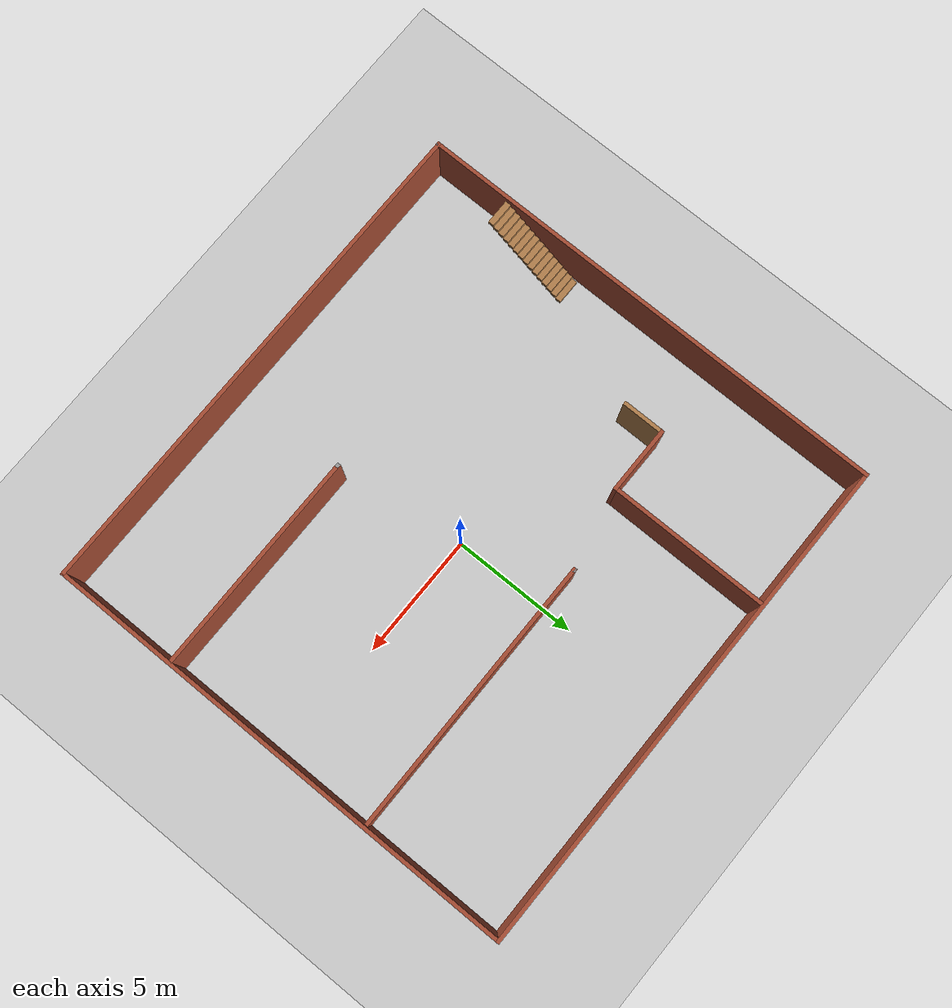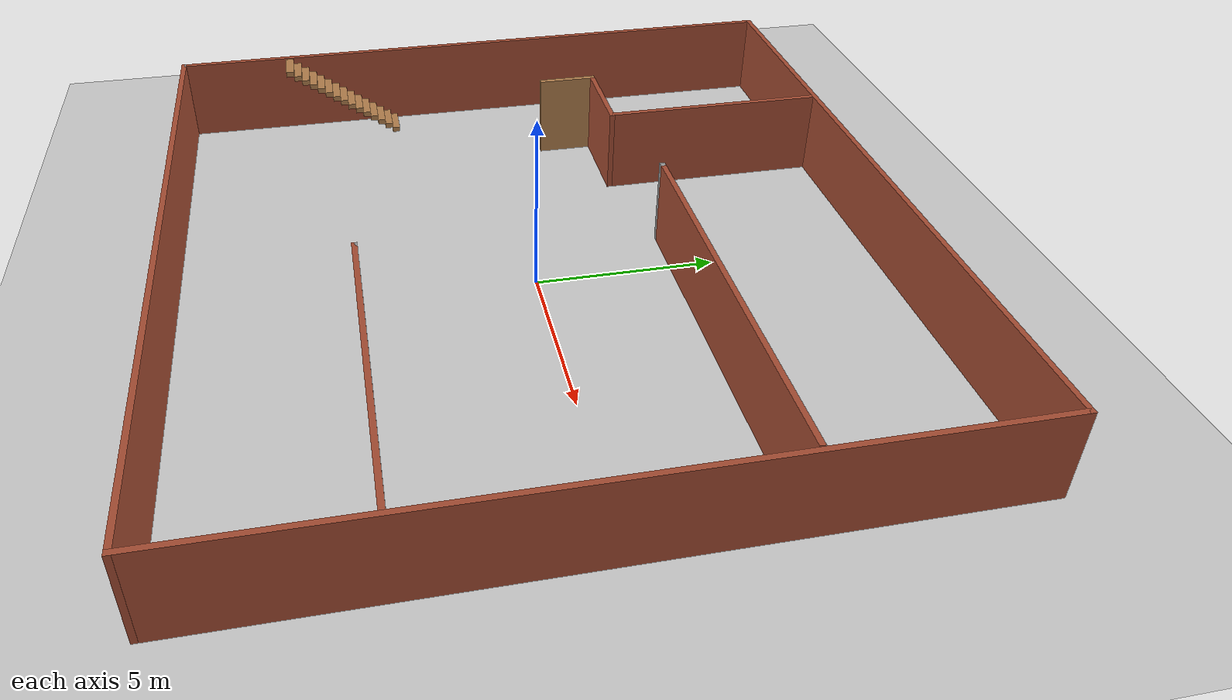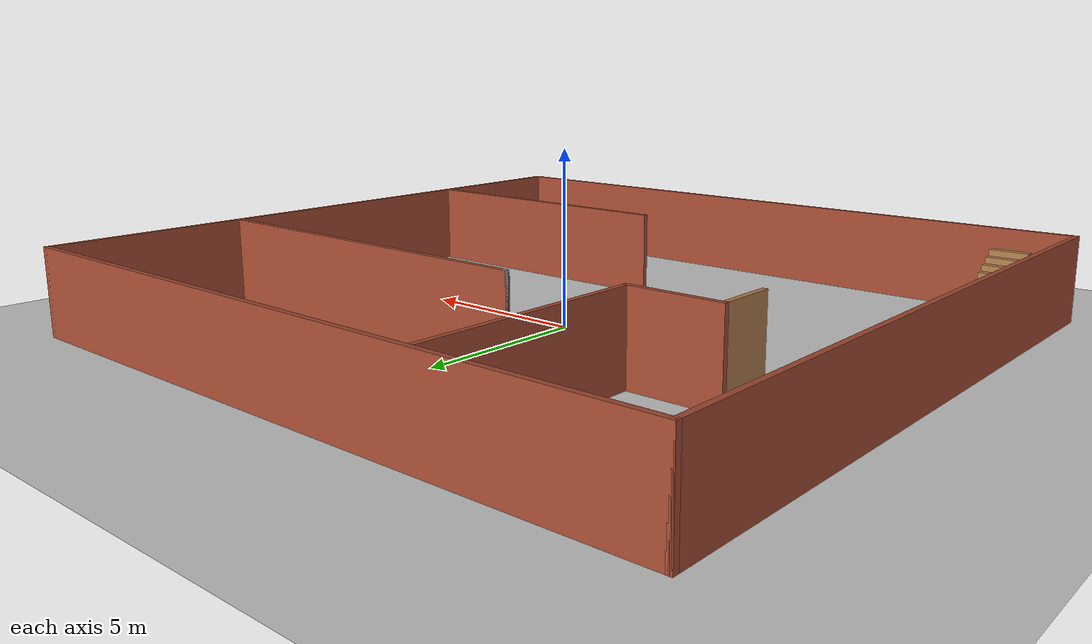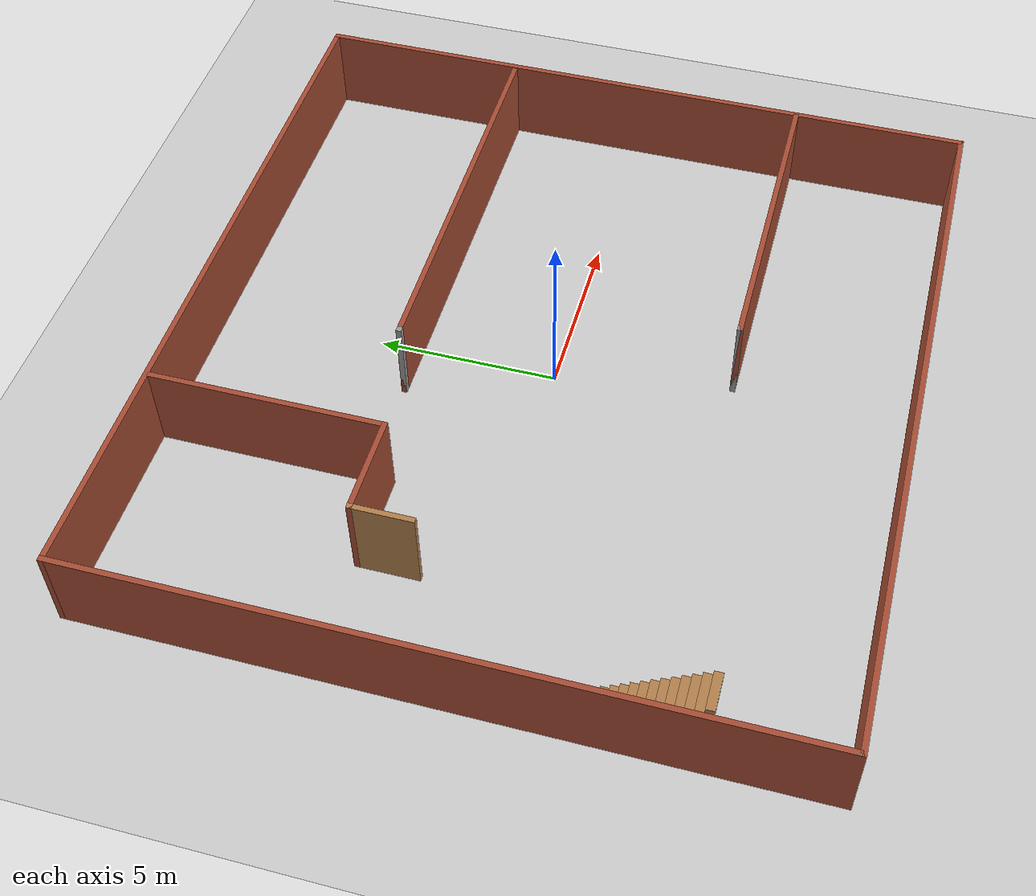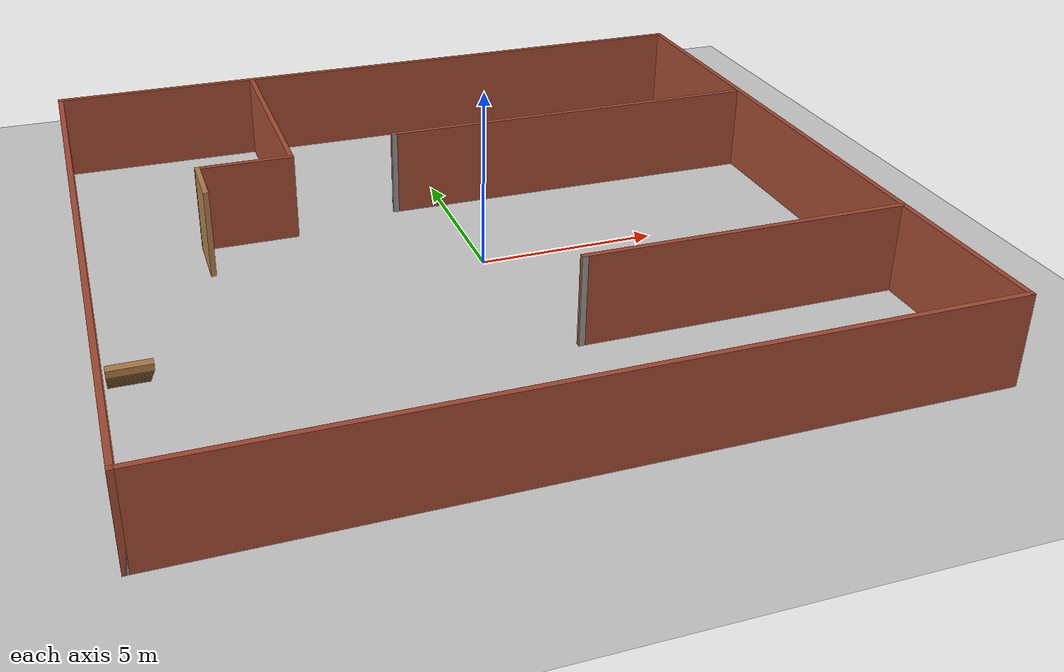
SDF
<sdf version="1.7">
 <world name="default">
  <light name="sun" type="directional">
   <pose>0 0 10 0 -0 0</pose>
   <diffuse>0.8 0.8 0.8 1</diffuse>
   <specular>0.2 0.2 0.2 1</specular>
   <attenuation>
    <range>1000</range>
    <constant>0.9</constant>
    <linear>0.01</linear>
    <quadratic>0.001</quadratic>
   </attenuation>
   <direction>-0.5 0.1 -0.9</direction>
   <spot><inner_angle>0</inner_angle><outer_angle>0</outer_angle><falloff>0</falloff></spot>
  </light>
  <model name="ground_plane">
   <static>1</static>
   <link name="link">
    <collision name="collision">
     <geometry><plane><normal>0 0 1</normal><size>100 100</size></plane></geometry>
     <surface>
      <contact><collide_bitmask>65535</collide_bitmask></contact>
      <friction><ode><mu>100</mu><mu2>50</mu2></ode></friction>
     </surface>
    </collision>
    <visual name="visual">
     <cast_shadows>0</cast_shadows>
     <geometry><plane><normal>0 0 1</normal><size>100 100</size></plane></geometry>
     <material>
      <script><uri>file://media/materials/scripts/gazebo.material</uri><name>Gazebo/Grey</name></script>
     </material>
    </visual>
   </link>
  </model>
  <gravity>0 0 -9.8</gravity>
  <magnetic_field>6e-06 2.3e-05 -4.2e-05</magnetic_field>
  <atmosphere type="adiabatic"/>
  <physics type="ode">
   <max_step_size>0.001</max_step_size>
   <real_time_factor>1</real_time_factor>
   <real_time_update_rate>1000</real_time_update_rate>
  </physics>
  <scene><ambient>0.4 0.4 0.4 1</ambient><background>0.7 0.7 0.7 1</background><shadows>1</shadows></scene>
  <audio><device>default</device></audio>
  <spherical_coordinates>
   <surface_model>EARTH_WGS84</surface_model>
   <latitude_deg>0</latitude_deg>
   <longitude_deg>0</longitude_deg>
   <elevation>0</elevation>
   <heading_deg>0</heading_deg>
  </spherical_coordinates>
  <model name="house_1">
   <pose>-0.36195 -0.003569 0 0 -0 0</pose>
   <link name="Stairs_0">
    <visual name="Stairs_0_Visual_0">
     <pose>-9.51882 -3.01859 0.083333 0 -0 0</pose>
     <geometry><box><size>1 0.233333 0.166667</size></box></geometry>
     <material>
      <script><uri>file://media/materials/scripts/gazebo.material</uri><name>Gazebo/Wood</name></script>
      <ambient>1 1 1 1</ambient>
     </material>
     <meta><layer>0</layer></meta>
    </visual>
    <collision name="Stairs_0_Collision_0">
     <geometry><box><size>1 0.233333 0.166667</size></box></geometry>
     <pose>-9.51882 -3.01859 0.083333 0 -0 0</pose>
    </collision>
    <visual name="Stairs_0_Visual_1">
     <pose>-9.51882 -3.25192 0.25 0 -0 0</pose>
     <geometry><box><size>1 0.233333 0.166667</size></box></geometry>
     <material>
      <script><uri>file://media/materials/scripts/gazebo.material</uri><name>Gazebo/Wood</name></script>
      <ambient>1 1 1 1</ambient>
     </material>
     <meta><layer>0</layer></meta>
    </visual>
    <collision name="Stairs_0_Collision_1">
     <geometry><box><size>1 0.233333 0.166667</size></box></geometry>
     <pose>-9.51882 -3.25192 0.25 0 -0 0</pose>
    </collision>
    <visual name="Stairs_0_Visual_2">
     <pose>-9.51882 -3.48526 0.416667 0 -0 0</pose>
     <geometry><box><size>1 0.233333 0.166667</size></box></geometry>
     <material>
      <script><uri>file://media/materials/scripts/gazebo.material</uri><name>Gazebo/Wood</name></script>
      <ambient>1 1 1 1</ambient>
     </material>
     <meta><layer>0</layer></meta>
    </visual>
    <collision name="Stairs_0_Collision_2">
     <geometry><box><size>1 0.233333 0.166667</size></box></geometry>
     <pose>-9.51882 -3.48526 0.416667 0 -0 0</pose>
    </collision>
    <visual name="Stairs_0_Visual_3">
     <pose>-9.51882 -3.71859 0.583333 0 -0 0</pose>
     <geometry><box><size>1 0.233333 0.166667</size></box></geometry>
     <material>
      <script><uri>file://media/materials/scripts/gazebo.material</uri><name>Gazebo/Wood</name></script>
      <ambient>1 1 1 1</ambient>
     </material>
     <meta><layer>0</layer></meta>
    </visual>
    <collision name="Stairs_0_Collision_3">
     <geometry><box><size>1 0.233333 0.166667</size></box></geometry>
     <pose>-9.51882 -3.71859 0.583333 0 -0 0</pose>
    </collision>
    <visual name="Stairs_0_Visual_4">
     <pose>-9.51882 -3.95193 0.75 0 -0 0</pose>
     <geometry><box><size>1 0.233333 0.166667</size></box></geometry>
     <material>
      <script><uri>file://media/materials/scripts/gazebo.material</uri><name>Gazebo/Wood</name></script>
      <ambient>1 1 1 1</ambient>
     </material>
     <meta><layer>0</layer></meta>
    </visual>
    <collision name="Stairs_0_Collision_4">
     <geometry><box><size>1 0.233333 0.166667</size></box></geometry>
     <pose>-9.51882 -3.95193 0.75 0 -0 0</pose>
    </collision>
    <visual name="Stairs_0_Visual_5">
     <pose>-9.51882 -4.18526 0.916667 0 -0 0</pose>
     <geometry><box><size>1 0.233333 0.166667</size></box></geometry>
     <material>
      <script><uri>file://media/materials/scripts/gazebo.material</uri><name>Gazebo/Wood</name></script>
      <ambient>1 1 1 1</ambient>
     </material>
     <meta><layer>0</layer></meta>
    </visual>
    <collision name="Stairs_0_Collision_5">
     <geometry><box><size>1 0.233333 0.166667</size></box></geometry>
     <pose>-9.51882 -4.18526 0.916667 0 -0 0</pose>
    </collision>
    <visual name="Stairs_0_Visual_6">
     <pose>-9.51882 -4.41859 1.08333 0 -0 0</pose>
     <geometry><box><size>1 0.233333 0.166667</size></box></geometry>
     <material>
      <script><uri>file://media/materials/scripts/gazebo.material</uri><name>Gazebo/Wood</name></script>
      <ambient>1 1 1 1</ambient>
     </material>
     <meta><layer>0</layer></meta>
    </visual>
    <collision name="Stairs_0_Collision_6">
     <geometry><box><size>1 0.233333 0.166667</size></box></geometry>
     <pose>-9.51882 -4.41859 1.08333 0 -0 0</pose>
    </collision>
    <visual name="Stairs_0_Visual_7">
     <pose>-9.51882 -4.65193 1.25 0 -0 0</pose>
     <geometry><box><size>1 0.233333 0.166667</size></box></geometry>
     <material>
      <script><uri>file://media/materials/scripts/gazebo.material</uri><name>Gazebo/Wood</name></script>
      <ambient>1 1 1 1</ambient>
     </material>
     <meta><layer>0</layer></meta>
    </visual>
    <collision name="Stairs_0_Collision_7">
     <geometry><box><size>1 0.233333 0.166667</size></box></geometry>
     <pose>-9.51882 -4.65193 1.25 0 -0 0</pose>
    </collision>
    <visual name="Stairs_0_Visual_8">
     <pose>-9.51882 -4.88526 1.41667 0 -0 0</pose>
     <geometry><box><size>1 0.233333 0.166667</size></box></geometry>
     <material>
      <script><uri>file://media/materials/scripts/gazebo.material</uri><name>Gazebo/Wood</name></script>
      <ambient>1 1 1 1</ambient>
     </material>
     <meta><layer>0</layer></meta>
    </visual>
    <collision name="Stairs_0_Collision_8">
     <geometry><box><size>1 0.233333 0.166667</size></box></geometry>
     <pose>-9.51882 -4.88526 1.41667 0 -0 0</pose>
    </collision>
    <visual name="Stairs_0_Visual_9">
     <pose>-9.51882 -5.11859 1.58333 0 -0 0</pose>
     <geometry><box><size>1 0.233333 0.166667</size></box></geometry>
     <material>
      <script><uri>file://media/materials/scripts/gazebo.material</uri><name>Gazebo/Wood</name></script>
      <ambient>1 1 1 1</ambient>
     </material>
     <meta><layer>0</layer></meta>
    </visual>
    <collision name="Stairs_0_Collision_9">
     <geometry><box><size>1 0.233333 0.166667</size></box></geometry>
     <pose>-9.51882 -5.11859 1.58333 0 -0 0</pose>
    </collision>
    <visual name="Stairs_0_Visual_10">
     <pose>-9.51882 -5.35192 1.75 0 -0 0</pose>
     <geometry><box><size>1 0.233333 0.166667</size></box></geometry>
     <material>
      <script><uri>file://media/materials/scripts/gazebo.material</uri><name>Gazebo/Wood</name></script>
      <ambient>1 1 1 1</ambient>
     </material>
     <meta><layer>0</layer></meta>
    </visual>
    <collision name="Stairs_0_Collision_10">
     <geometry><box><size>1 0.233333 0.166667</size></box></geometry>
     <pose>-9.51882 -5.35192 1.75 0 -0 0</pose>
    </collision>
    <visual name="Stairs_0_Visual_11">
     <pose>-9.51882 -5.58526 1.91667 0 -0 0</pose>
     <geometry><box><size>1 0.233333 0.166667</size></box></geometry>
     <material>
      <script><uri>file://media/materials/scripts/gazebo.material</uri><name>Gazebo/Wood</name></script>
      <ambient>1 1 1 1</ambient>
     </material>
     <meta><layer>0</layer></meta>
    </visual>
    <collision name="Stairs_0_Collision_11">
     <geometry><box><size>1 0.233333 0.166667</size></box></geometry>
     <pose>-9.51882 -5.58526 1.91667 0 -0 0</pose>
    </collision>
    <visual name="Stairs_0_Visual_12">
     <pose>-9.51882 -5.81859 2.08333 0 -0 0</pose>
     <geometry><box><size>1 0.233333 0.166667</size></box></geometry>
     <material>
      <script><uri>file://media/materials/scripts/gazebo.material</uri><name>Gazebo/Wood</name></script>
      <ambient>1 1 1 1</ambient>
     </material>
     <meta><layer>0</layer></meta>
    </visual>
    <collision name="Stairs_0_Collision_12">
     <geometry><box><size>1 0.233333 0.166667</size></box></geometry>
     <pose>-9.51882 -5.81859 2.08333 0 -0 0</pose>
    </collision>
    <visual name="Stairs_0_Visual_13">
     <pose>-9.51882 -6.05192 2.25 0 -0 0</pose>
     <geometry><box><size>1 0.233333 0.166667</size></box></geometry>
     <material>
      <script><uri>file://media/materials/scripts/gazebo.material</uri><name>Gazebo/Wood</name></script>
      <ambient>1 1 1 1</ambient>
     </material>
     <meta><layer>0</layer></meta>
    </visual>
    <collision name="Stairs_0_Collision_13">
     <geometry><box><size>1 0.233333 0.166667</size></box></geometry>
     <pose>-9.51882 -6.05192 2.25 0 -0 0</pose>
    </collision>
    <visual name="Stairs_0_Visual_14">
     <pose>-9.51882 -6.28526 2.41667 0 -0 0</pose>
     <geometry><box><size>1 0.233333 0.166667</size></box></geometry>
     <material>
      <script><uri>file://media/materials/scripts/gazebo.material</uri><name>Gazebo/Wood</name></script>
      <ambient>1 1 1 1</ambient>
     </material>
     <meta><layer>0</layer></meta>
    </visual>
    <collision name="Stairs_0_Collision_14">
     <geometry><box><size>1 0.233333 0.166667</size></box></geometry>
     <pose>-9.51882 -6.28526 2.41667 0 -0 0</pose>
    </collision>
   </link>
   <link name="Wall_1">
    <collision name="Wall_1_Collision">
     <geometry><box><size>19.5 0.15 2.5</size></box></geometry>
     <pose>0 0 1.25 0 -0 0</pose>
    </collision>
    <visual name="Wall_1_Visual">
     <pose>0 0 1.25 0 -0 0</pose>
     <geometry><box><size>19.5 0.15 2.5</size></box></geometry>
     <material>
      <script><uri>file://media/materials/scripts/gazebo.material</uri><name>Gazebo/Bricks</name></script>
      <ambient>1 1 1 1</ambient>
     </material>
     <meta><layer>0</layer></meta>
    </visual>
    <pose>-10.175 0 0 0 -0 -1.5708</pose>
   </link>
   <link name="Wall_10">
    <collision name="Wall_10_Collision">
     <geometry><box><size>1.75 0.15 2.5</size></box></geometry>
     <pose>0 0 1.25 0 -0 0</pose>
    </collision>
    <visual name="Wall_10_Visual">
     <pose>0 0 1.25 0 -0 0</pose>
     <geometry><box><size>1.75 0.15 2.5</size></box></geometry>
     <material>
      <script><uri>file://media/materials/scripts/gazebo.material</uri><name>Gazebo/Wood</name></script>
      <ambient>1 1 1 1</ambient>
     </material>
     <meta><layer>0</layer></meta>
    </visual>
    <pose>-6.85764 2.40326 0 0 -0 -1.5708</pose>
   </link>
   <link name="Wall_12">
    <collision name="Wall_12_Collision">
     <geometry><box><size>9 0.15 2.5</size></box></geometry>
     <pose>0 0 1.25 0 -0 0</pose>
    </collision>
    <visual name="Wall_12_Visual">
     <pose>0 0 1.25 0 -0 0</pose>
     <geometry><box><size>9 0.15 2.5</size></box></geometry>
     <material>
      <script><uri>file://media/materials/scripts/gazebo.material</uri><name>Gazebo/Bricks</name></script>
      <ambient>1 1 1 1</ambient>
     </material>
     <meta><layer>0</layer></meta>
    </visual>
    <pose>5.68038 -4.80976 0 0 -0 3.14159</pose>
   </link>
   <link name="Wall_13">
    <collision name="Wall_13_Collision">
     <geometry><box><size>0.16 0.15 2.5</size></box></geometry>
     <pose>0 0 1.25 0 -0 0</pose>
    </collision>
    <visual name="Wall_13_Visual">
     <pose>0 0 1.25 0 -0 0</pose>
     <geometry><box><size>0.16 0.15 2.5</size></box></geometry>
     <material>
      <script><uri>file://media/materials/scripts/gazebo.material</uri><name>Gazebo/Grey</name></script>
      <ambient>1 1 1 1</ambient>
     </material>
     <meta><layer>0</layer></meta>
    </visual>
    <pose>1.26038 -4.80976 0 0 -0 0</pose>
   </link>
   <link name="Wall_15">
    <collision name="Wall_15_Collision">
     <geometry><box><size>11.25 0.15 2.5</size></box></geometry>
     <pose>0 0 1.25 0 -0 0</pose>
    </collision>
    <visual name="Wall_15_Visual">
     <pose>0 0 1.25 0 -0 0</pose>
     <geometry><box><size>11.25 0.15 2.5</size></box></geometry>
     <material>
      <script><uri>file://media/materials/scripts/gazebo.material</uri><name>Gazebo/Bricks</name></script>
      <ambient>1 1 1 1</ambient>
     </material>
     <meta><layer>0</layer></meta>
    </visual>
    <pose>4.45015 3.87119 0 0 -0 3.14159</pose>
   </link>
   <link name="Wall_16">
    <collision name="Wall_16_Collision">
     <geometry><box><size>0.16 0.15 2.5</size></box></geometry>
     <pose>0 0 1.25 0 -0 0</pose>
    </collision>
    <visual name="Wall_16_Visual">
     <pose>0 0 1.25 0 -0 0</pose>
     <geometry><box><size>0.16 0.15 2.5</size></box></geometry>
     <material>
      <script><uri>file://media/materials/scripts/gazebo.material</uri><name>Gazebo/Grey</name></script>
      <ambient>1 1 1 1</ambient>
     </material>
     <meta><layer>0</layer></meta>
    </visual>
    <pose>-1.09485 3.87119 0 0 -0 0</pose>
   </link>
   <link name="Wall_2">
    <collision name="Wall_2_Collision">
     <geometry><box><size>0.15 0.15 2.5</size></box></geometry>
     <pose>0 0 1.25 0 -0 0</pose>
    </collision>
    <visual name="Wall_2_Visual">
     <pose>0 0 1.25 0 -0 0</pose>
     <geometry><box><size>0.15 0.15 2.5</size></box></geometry>
     <material>
      <script><uri>file://media/materials/scripts/gazebo.material</uri><name>Gazebo/Grey</name></script>
      <ambient>1 1 1 1</ambient>
     </material>
     <meta><layer>0</layer></meta>
    </visual>
    <pose>-10.175 -9.675 0 0 -0 0</pose>
   </link>
   <link name="Wall_4">
    <collision name="Wall_4_Collision">
     <geometry><box><size>20.5 0.15 2.5</size></box></geometry>
     <pose>0 0 1.25 0 -0 0</pose>
    </collision>
    <visual name="Wall_4_Visual">
     <pose>0 0 1.25 0 -0 0</pose>
     <geometry><box><size>20.5 0.15 2.5</size></box></geometry>
     <material>
      <script><uri>file://media/materials/scripts/gazebo.material</uri><name>Gazebo/Bricks</name></script>
      <ambient>1 1 1 1</ambient>
     </material>
     <meta><layer>0</layer></meta>
    </visual>
    <pose>-0 9.675 0 0 -0 0</pose>
   </link>
   <link name="Wall_5">
    <collision name="Wall_5_Collision">
     <geometry><box><size>19.5 0.15 2.5</size></box></geometry>
     <pose>0 0 1.25 0 -0 0</pose>
    </collision>
    <visual name="Wall_5_Visual">
     <pose>0 0 1.25 0 -0 0</pose>
     <geometry><box><size>19.5 0.15 2.5</size></box></geometry>
     <material>
      <script><uri>file://media/materials/scripts/gazebo.material</uri><name>Gazebo/Bricks</name></script>
      <ambient>1 1 1 1</ambient>
     </material>
     <meta><layer>0</layer></meta>
    </visual>
    <pose>10.175 0 0 0 -0 -1.5708</pose>
   </link>
   <link name="Wall_6">
    <collision name="Wall_6_Collision">
     <geometry><box><size>20.5 0.15 2.5</size></box></geometry>
     <pose>0 0 1.25 0 -0 0</pose>
    </collision>
    <visual name="Wall_6_Visual">
     <pose>0 0 1.25 0 -0 0</pose>
     <geometry><box><size>20.5 0.15 2.5</size></box></geometry>
     <material>
      <script><uri>file://media/materials/scripts/gazebo.material</uri><name>Gazebo/Bricks</name></script>
      <ambient>1 1 1 1</ambient>
     </material>
     <meta><layer>0</layer></meta>
    </visual>
    <pose>-0 -9.675 0 0 -0 3.14159</pose>
   </link>
   <link name="Wall_8">
    <collision name="Wall_8_Collision">
     <geometry><box><size>6.5 0.15 2.5</size></box></geometry>
     <pose>0 0 1.25 0 -0 0</pose>
    </collision>
    <visual name="Wall_8_Visual">
     <pose>0 0 1.25 0 -0 0</pose>
     <geometry><box><size>6.5 0.15 2.5</size></box></geometry>
     <material>
      <script><uri>file://media/materials/scripts/gazebo.material</uri><name>Gazebo/Bricks</name></script>
      <ambient>1 1 1 1</ambient>
     </material>
     <meta><layer>0</layer></meta>
    </visual>
    <pose>-4.25765 6.37826 0 0 -0 -1.5708</pose>
   </link>
   <link name="Wall_9">
    <collision name="Wall_9_Collision">
     <geometry><box><size>2.75 0.15 2.5</size></box></geometry>
     <pose>0 0 1.25 0 -0 0</pose>
    </collision>
    <visual name="Wall_9_Visual">
     <pose>0 0 1.25 0 -0 0</pose>
     <geometry><box><size>2.75 0.15 2.5</size></box></geometry>
     <material>
      <script><uri>file://media/materials/scripts/gazebo.material</uri><name>Gazebo/Bricks</name></script>
      <ambient>1 1 1 1</ambient>
     </material>
     <meta><layer>0</layer></meta>
    </visual>
    <pose>-5.55764 3.20326 0 0 -0 3.14159</pose>
   </link>
   <static>1</static>
  </model>
 </world>
</sdf>
